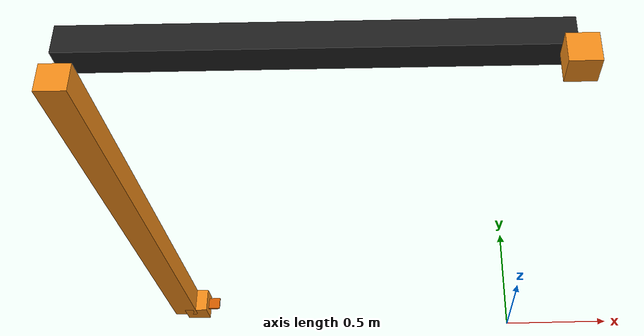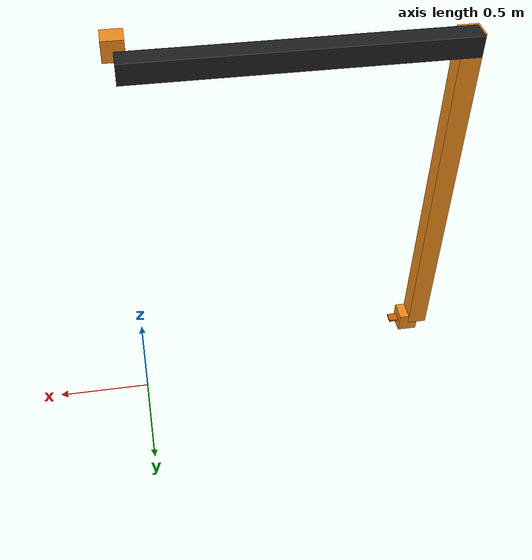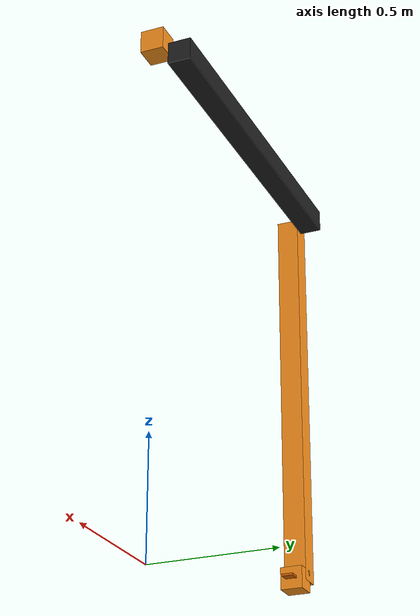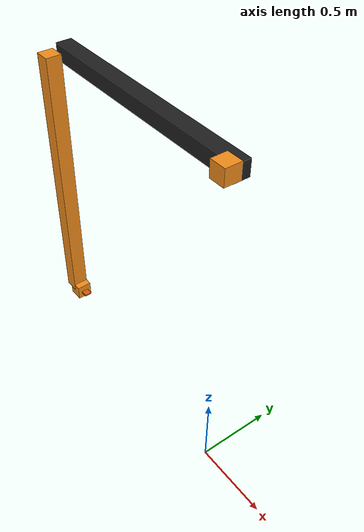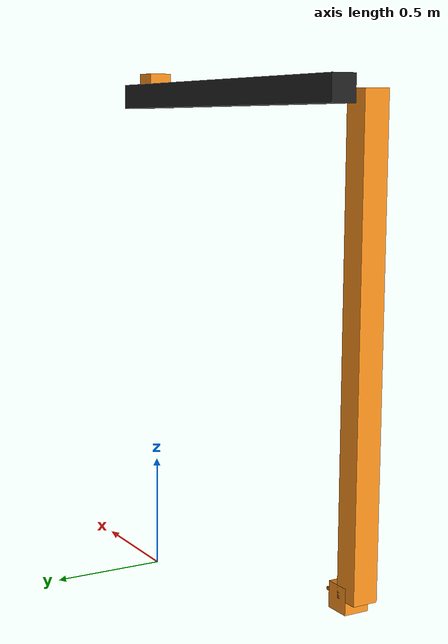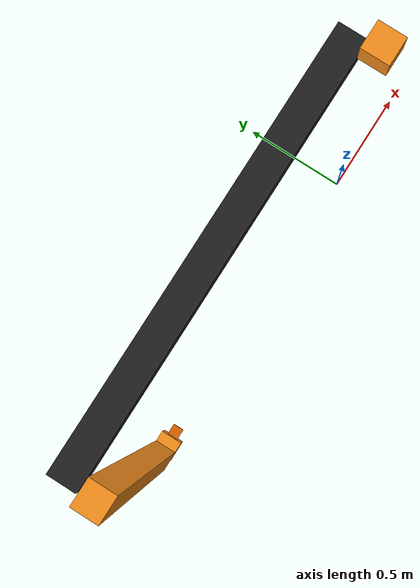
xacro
<?xml version="1.0"?>
<!-- Revolute-Revolute Manipulator -->
<robot name="scanner" xmlns:xacro="http://www.ros.org/wiki/xacro">

  <!-- Constants for robot dimensions -->
  <xacro:property name="PI" value="3.1415926535897931"/>
  <xacro:property name="mass" value="1" /> <!-- arbitrary value for mass -->
  <xacro:property name="width" value="0.1" /> <!-- Square dimensions (widthxwidth) of beams -->
  <xacro:property name="l0" value="${2 * axel_offset}" /> <!-- Link 1 -->
  <xacro:property name="l1" value="1.55" /> <!-- Link 2 -->
  <xacro:property name="l2" value="1.8" /> <!-- Link 3 -->

  <!-- Edit the last heigh as the axes is hitting the ground -->
  <xacro:property name="h" value="${l0 + l2 + 7 * axel_offset}" /> <!-- (Height of construction -->

  <xacro:property name="camera_link" value="0.05" /> <!-- Size of square 'camera' box -->
  <xacro:property name="axel_offset" value="0.05" /> <!-- Space btw top of beam and the each joint -->

  <!-- Import all Gazebo-customization elements, including Gazebo colors -->
  <!-- Import Rviz colors -->

  <!-- Used for fixing robot to Gazebo 'base_link' -->
  <link name="world"/>

  <joint name="joint0" type="continuous">
    <parent link="world"/>
    <child link="link1"/>
    <limit effort="1000.0"  velocity="0.5"/>
    <origin xyz="0 0 ${h}" rpy="0 ${PI} 0"/>
    <axis xyz="0 0 1"/>
    <dynamics damping="0.7"/>

  </joint>

  <!-- First transformation link -->
  <link name="link1">
    <collision>
      <origin xyz="0 0 ${l0/2}" rpy="0 0 0"/>
      <geometry>
	<box size="${width} ${width} ${l0}"/>
      </geometry>
    </collision>

    <visual>
      <origin xyz="0 0 ${l0/2}" rpy="0 0 0"/> <!-- Shit moment #1-->
      <geometry>
	<box size="${width} ${width} ${l0}"/>
      </geometry>
      <material name="orange"/>
    </visual>

    <inertial>
      <origin xyz="0 0 ${l0/2}" rpy="0 0 0"/>
      <mass value="${mass}"/>
      <inertia
	  ixx="${mass / 12.0 * (width*width + l0*l0)}" ixy="0.0" ixz="0.0"
	  iyy="${mass / 12.0 * (l0*l0 + width*width)}" iyz="0.0"
	  izz="${mass / 12.0 * (width*width + width*width)}"/>
    </inertial>
  </link>

  <joint name="joint1" type="fixed">
    <parent link="link1"/>
    <child link="link2"/>
    <limit effort="19000.0" lower="${-PI/2}" upper="${PI/2}" velocity="0.5"/>
    <origin xyz="0 ${width} ${l0}" rpy="0 ${PI/2} 0"/>
    <axis xyz="0 1 0"/>
    <dynamics damping="0.7"/>
  </joint>

  <!-- Middle Link -->
  <link name="link2">
    <collision>
      <origin xyz="0 0 ${l1/2}" rpy="0 0 0"/>
      <geometry>
	<box size="${width} ${width} ${l1}"/>
      </geometry>
    </collision>

    <visual>
      <origin xyz="0 0 ${l1/2}" rpy="0 0 0"/>
      <geometry>
	<box size="${width} ${width} ${l1}"/>
      </geometry>
      <material name="black"/>
    </visual>

    <inertial>
      <origin xyz="0 0 ${l1/2}" rpy="0 0 0"/>
      <mass value="${mass}"/>
      <inertia
	  ixx="${mass / 12.0 * (width*width + l1*l1)}" ixy="0.0" ixz="0.0"
	  iyy="${mass / 12.0 * (l1*l1 + width*width)}" iyz="0.0"
	  izz="${mass / 12.0 * (width*width + width*width)}"/>
    </inertial>
  </link>

  <joint name="joint2" type="fixed">
    <parent link="link2"/>
    <child link="link3"/>
    <limit effort="1000.0" lower="${-PI/2}" upper="${PI/2}" velocity="0.5"/>
    <origin xyz="0 ${-width} ${l1}" rpy="0 ${-PI/2} 0"/>
    <axis xyz="0 1 0"/>
    <dynamics damping="0.7"/>
  </joint>

  <!-- Top Link -->
  <link name="link3">
    <collision>
      <origin xyz="0 0 ${l2/2}" rpy="0 0 0"/>
      <geometry>
	<box size="${width} ${width} ${l2}"/>
      </geometry>
    </collision>

    <visual>
      <origin xyz="0 0 ${l2/2}" rpy="0 0 0"/>
      <geometry>
	      <box size="${width} ${width} ${l2}"/>
      </geometry>
      <material name="orange"/>
    </visual>

    <inertial>
      <origin xyz="0 0 ${l2/2}" rpy="0 0 0"/>
      <mass value="${mass}"/>
      <inertia
	  ixx="${mass / 12.0 * (width*width + l2*l2)}" ixy="0.0" ixz="0.0"
	  iyy="${mass / 12.0 * (l2*l2 + width*width)}" iyz="0.0"
	  izz="${mass / 12.0 * (width*width + width*width)}"/>
    </inertial>
  </link>

  <link name="link4">
    <collision>
      <origin xyz="0 0 ${width/2}" rpy="0 0 0"/>
      <geometry>
  <box size="${width} ${width} ${width}"/>
      </geometry>
    </collision>

    <visual>
      <origin xyz="0 0 ${width/2}" rpy="0 0 0"/>
      <geometry>
        <box size="${width} ${width} ${width}"/>
      </geometry>
      <material name="orange"/>
    </visual>

    <inertial>
      <origin xyz="0 0 ${width/2}" rpy="0 0 0"/>
      <mass value="${mass}"/>
      <inertia
    ixx="${mass / 12.0 * (width*width + width*width)}" ixy="0.0" ixz="0.0"
    iyy="${mass / 12.0 * (width*width + width*width)}" iyz="0.0"
    izz="${mass / 12.0 * (width*width + width*width)}"/>
    </inertial>
  </link>

   <joint name="l3_to_l4_joint" type="fixed">
    <parent link="link3"/>
    <child link="link4"/>
    <limit effort="1000.0" lower="${-PI/2}" upper="${PI/2}" velocity="0.5"/>
    <axis xyz="0 0 1" />
    <origin xyz="0 0 ${l2}" rpy="0 ${-PI/2} 0"/>
    <dynamics damping="0.7"/>
  </joint>

  <link name="kinect_link">
    <collision>
      <origin xyz="0 0 0" rpy="0 0 0"/>
      <geometry>
	     <box size="0.1 0.05 0.01"/>
      </geometry>
    </collision>
    <visual>
      <origin xyz="0 0 0" rpy="0 0 0"/>
      <geometry>
       <box size="0.1 0.05 0.01"/>
      </geometry>
    </visual>
    <inertial>
      <origin xyz="0 0 0" rpy="0 0 0"/>
      <mass value="${mass}"/>
      <inertia
        ixx="${mass * (0.1*0.1 + 0.1*0.1)}" ixy="0.0" ixz="0.0"
        iyy="${mass * (0.1*0.1 + 0.1*0.1)}" iyz="0.0"
        izz="${mass * (0.1*0.1 + 0.1*0.1)}"/>
      </inertial>

  </link>

  <joint name="kinect_joint" type="fixed">
    <parent link="link4"/>
    <child link="kinect_link"/>
    <limit effort="1000.0" lower="${-PI/2}" upper="${PI/2}" velocity="0.5"/>
    <axis xyz="0 0 1" />
    <origin xyz="0 0 ${width}" rpy="${-PI/2} ${-PI/2} ${PI/2} "/>
    <dynamics damping="0.7"/>
  </joint>

  <joint name="cameraLeft_depth_joint" type="fixed">
    <origin xyz="0 0 0" rpy="${-PI/2} 0 ${-PI/2} "/>
    <parent link="kinect_link"/>
    <child link="cameraLeft_depth_link"/>
  </joint>

  <link name="cameraLeft_depth_link"></link>

  <!--                GAZEBO RELATED PART                             -->

  <!-- ROS Control plugin for Gazebo -->
  <gazebo>
    <plugin name="gazebo_ros_control" filename="libgazebo_ros_control.so">
      <robotNamespace>/scanner</robotNamespace>
    </plugin>
  </gazebo>

  <!-- transmission -->
  <transmission name="tran0">
    <type>transmission_interface/SimpleTransmission</type>
    <joint name="joint0">
      <hardwareInterface>hardware_interface/EffortJointInterface</hardwareInterface>
    </joint>
    <actuator name="motor0">
      <hardwareInterface>hardware_interface/EffortJointInterface</hardwareInterface>
      <mechanicalReduction>1</mechanicalReduction>
    </actuator>
  </transmission>

  <!-- Here we go -->
  <gazebo reference="kinect_link">
    <sensor name="camera" type="depth">
      <update_rate>20</update_rate>
      <camera>
        <horizontal_fov>1.047198</horizontal_fov>
        <image>
          <width>640</width>
          <height>480</height>
          <format>R8G8B8</format>
        </image>
        <clip>
          <near>0.05</near>
          <far>3</far>
        </clip>
      </camera>
        <plugin name="camera_controller" filename="libgazebo_ros_openni_kinect.so">
          <alwaysOn>true</alwaysOn>
          <updateRate>1.0</updateRate>
          <cameraName>camera</cameraName>
          <frameName>cameraLeft_depth_link</frameName>
          <imageTopicName>rgb/image_raw</imageTopicName>
          <depthImageTopicName>depth/image_raw</depthImageTopicName>
          <pointCloudTopicName>depth/points</pointCloudTopicName>
          <cameraInfoTopicName>rgb/camera_info</cameraInfoTopicName>
          <depthImageCameraInfoTopicName>depth/camera_info</depthImageCameraInfoTopicName>
          <pointCloudCutoff>0.4</pointCloudCutoff>
          <hackBaseline>0.07</hackBaseline>
          <distortionK1>0.0</distortionK1>
          <distortionK2>0.0</distortionK2>
          <distortionK3>0.0</distortionK3>
          <distortionT1>0.0</distortionT1>
          <distortionT2>0.0</distortionT2>
          <CxPrime>0.0</CxPrime>
          <Cx>0.0</Cx>
          <Cy>0.0</Cy>
          <focalLength>0.0</focalLength>
        </plugin>
    </sensor>
  </gazebo>

  <!-- Here we finish -->
</robot>
